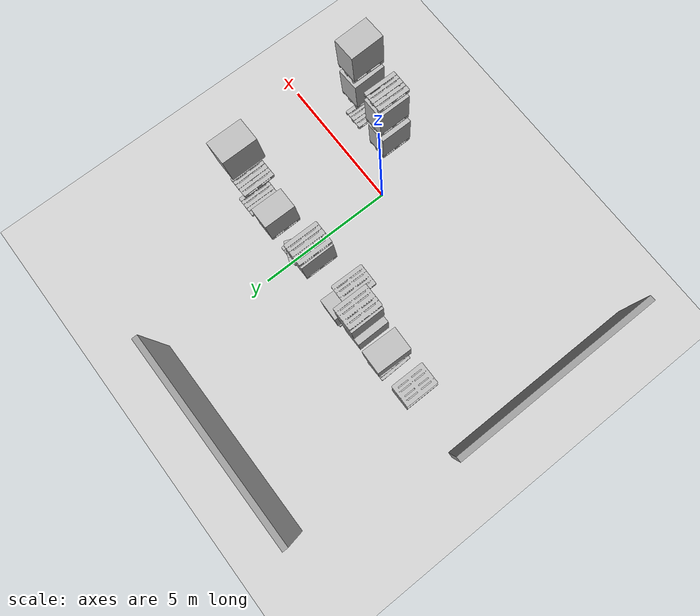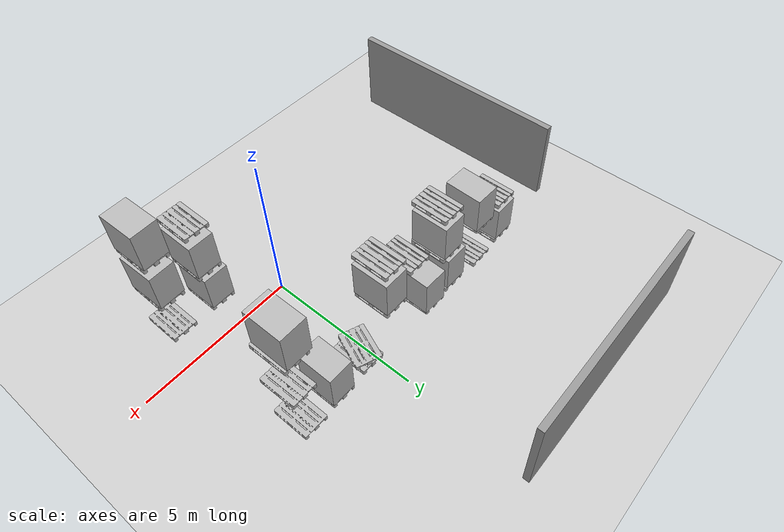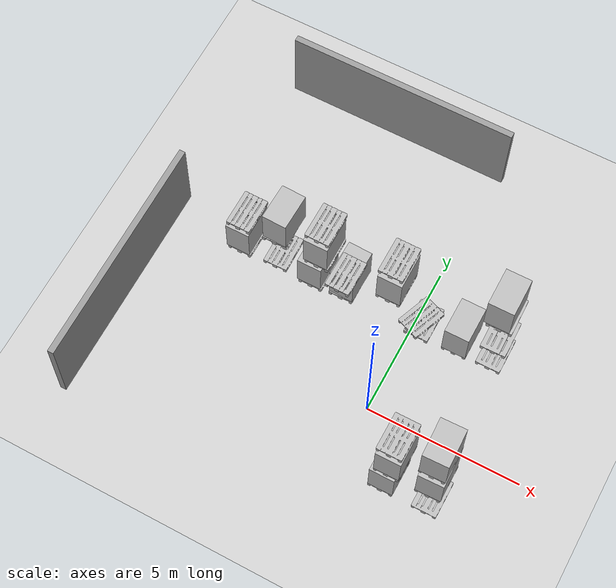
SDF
<sdf version="1.4">
 <world name="warehouse_alley">
  <scene><ambient>0.3 0.3 0.3 1.0</ambient><grid>true</grid><sky><clouds><speed>4</speed></clouds></sky></scene>
  <physics type="ode">
   <gravity>0 0 -9.81</gravity>
   <ode>
    <solver>
     <use_dynamic_moi_rescaling>true</use_dynamic_moi_rescaling>
     <type>quick</type>
     <iters>50</iters>
     <sor>1.0</sor>
    </solver>
    <constraints>
     <cfm>0.0</cfm>
     <erp>0.2</erp>
     <contact_max_correcting_vel>100.0</contact_max_correcting_vel>
     <contact_surface_layer>0.0</contact_surface_layer>
    </constraints>
   </ode>
   <real_time_update_rate>1000</real_time_update_rate>
   <max_step_size>0.001</max_step_size>
  </physics>
  <light type="directional" name="sun">
   <cast_shadows>false</cast_shadows>
   <pose>0 0 100 0 0 0</pose>
   <diffuse>0.3 0.3 0.3 1</diffuse>
   <specular>0.3 0.3 0.3 1</specular>
   <attenuation>
    <range>1000</range>
    <constant>1</constant>
    <linear>0.01</linear>
    <quadratic>0.001</quadratic>
   </attenuation>
   <direction>0 0 -1</direction>
  </light>
  <light type="spot" name="lamp_post_light">
   <pose>2 1 6  0 0 0</pose>
   <diffuse>0.5 0.5 0.5 1</diffuse>
   <specular>0.2 0.2 0.2 1</specular>
   <attenuation>
    <range>20</range>
    <constant>0.3</constant>
    <linear>0.05</linear>
    <quadratic>0.001</quadratic>
   </attenuation>
   <direction>0 0 -1</direction>
   <spot><inner_angle>0.9</inner_angle><outer_angle>2.0</outer_angle><falloff>1.0</falloff></spot>
  </light>
  <light type="spot" name="lamp_post_light2">
   <pose>-4.6 1 6  0 0 0</pose>
   <diffuse>0.5 0.5 0.5 1</diffuse>
   <specular>0.2 0.2 0.2 1</specular>
   <attenuation>
    <range>20</range>
    <constant>0.3</constant>
    <linear>0.05</linear>
    <quadratic>0.001</quadratic>
   </attenuation>
   <direction>0 0 -1</direction>
   <spot><inner_angle>0.9</inner_angle><outer_angle>2.0</outer_angle><falloff>1.0</falloff></spot>
  </light>
  <light type="spot" name="lamp_post_light_uav">
   <pose>9 -9 4  0 0 0</pose>
   <diffuse>0.4 0.4 0.4 1</diffuse>
   <specular>0.0 0.0 0.0 1</specular>
   <attenuation>
    <range>20</range>
    <constant>0.5</constant>
    <linear>0.05</linear>
    <quadratic>0.001</quadratic>
   </attenuation>
   <direction>0 0 -1</direction>
   <spot><inner_angle>0.25</inner_angle><outer_angle>0.5</outer_angle><falloff>1.0</falloff></spot>
  </light>
  <include><uri>model://ground_plane</uri></include>
  <include>
   <name>pallet 1 box</name>
   <uri>model://big_box3</uri>
   <pose>1.48626 3.390705 0.760253 0 0.000143 -1.57317</pose>
  </include>
  <include>
   <name>pallet 1 support</name>
   <uri>model://europallet</uri>
   <pose>1.48088 3.400944 0.0635 0 0 -1.56736</pose>
  </include>
  <include>
   <name>pallet 4 box</name>
   <uri>model://big_box3</uri>
   <pose>-2.37439 3.440964 0.776474 0 0 -1.59804</pose>
  </include>
  <include>
   <name>pallet 4 support</name>
   <uri>model://europallet</uri>
   <pose>-2.40127 3.415746 0.0635 0 0 -1.5558</pose>
  </include>
  <include>
   <name>pallet 7 support</name>
   <uri>model://europallet</uri>
   <pose>2.59788 3.454115 0.0635 0 0 -1.56921</pose>
  </include>
  <include>
   <name>pallet 10 box</name>
   <uri>model://big_box3</uri>
   <pose>-3.45548 3.349857 0.774725 0 0 -1.56894</pose>
  </include>
  <include>
   <name>pallet 10 support</name>
   <uri>model://europallet</uri>
   <pose>-3.41303 3.343739 0.0635 0 -0 1.56536</pose>
  </include>
  <include>
   <name>pallet 11 support</name>
   <uri>model://europallet</uri>
   <pose>-4.70127 3.415746 0.0635 0 0 -1.5558</pose>
  </include>
  <include>
   <name>pallet 12 box</name>
   <uri>model://big_box3</uri>
   <pose>-5.95548 3.349857 0.774725 0 0 -1.56894</pose>
  </include>
  <include>
   <name>pallet 12 support</name>
   <uri>model://europallet</uri>
   <pose>-5.91303 3.343739 0.0635 0 -0 1.56536</pose>
  </include>
  <include>
   <name>pallet 18 support</name>
   <uri>model://europallet</uri>
   <pose>0.234986 3.337637 0.0635 0 -0 1.56536</pose>
  </include>
  <include>
   <name>pallet 18b support</name>
   <uri>model://europallet</uri>
   <pose>0.134986 3.337637 0.2102 0 -0 1.2</pose>
  </include>
  <include>
   <name>pallet 2 box</name>
   <uri>model://big_box3</uri>
   <pose>-3.25548 3.349857 2.3397 0 0 -1.56894</pose>
  </include>
  <include>
   <name>pallet 2 support</name>
   <uri>model://europallet</uri>
   <pose>-3.21303 3.343739 1.6373 0 -0 1.56536</pose>
  </include>
  <include>
   <name>pallet 8 support</name>
   <uri>model://europallet</uri>
   <pose>2.64128 3.308661 1.64676 0 0 -1.55378</pose>
  </include>
  <include>
   <name>pallet 9 support</name>
   <uri>model://europallet</uri>
   <pose>-2.28744 2.915349 1.64676 0 -0 1.5541</pose>
  </include>
  <include>
   <name>pallet 13 box</name>
   <uri>model://big_box3</uri>
   <pose>-4.67439 3.440964 2.35696 0 0 -1.59804</pose>
  </include>
  <include>
   <name>pallet 13 support</name>
   <uri>model://europallet</uri>
   <pose>-4.70127 3.415746 1.64676 0 0 -1.5558</pose>
  </include>
  <include>
   <name>pallet 14 support</name>
   <uri>model://europallet</uri>
   <pose>-5.91303 3.343739 1.64676 0 -0 1.56536</pose>
  </include>
  <include>
   <name>pallet 19 box</name>
   <uri>model://big_box3</uri>
   <pose>-0.8 3.337637 2.3397 0 0 -1.56894</pose>
  </include>
  <include>
   <name>pallet 19 support</name>
   <uri>model://europallet</uri>
   <pose>-0.8 3.337637 1.6373 0 -0 1.56536</pose>
  </include>
  <include>
   <name>pallet 20 support</name>
   <uri>model://europallet</uri>
   <pose>-3.21303 3.343739 3.27046 0 -0 1.56536</pose>
  </include>
  <include>
   <name>pallet 21 box</name>
   <uri>model://big_box3</uri>
   <pose>2.56918 3.321158 3.97286 0 0 -1.56652</pose>
  </include>
  <include>
   <name>pallet 21 support</name>
   <uri>model://europallet</uri>
   <pose>2.64128 3.308661 3.27046 0 0 -1.55378</pose>
  </include>
  <include>
   <name>pallet 22 support</name>
   <uri>model://europallet</uri>
   <pose>-0.8 3.337637 3.27046 0 -0 1.56536</pose>
  </include>
  <include>
   <name>pallet B-0-1 box</name>
   <uri>model://big_box3</uri>
   <pose>1.48626 -1.5 0.760253 0 0.000143 1.57317</pose>
  </include>
  <include>
   <name>pallet B-0-1 support</name>
   <uri>model://europallet</uri>
   <pose>1.48088 -1.5 0.0635 0 0 1.56736</pose>
  </include>
  <include>
   <name>pallet B-0-2 support</name>
   <uri>model://europallet</uri>
   <pose>2.9 -1.5 0.0635 0 0 1.56921</pose>
  </include>
  <include>
   <name>pallet B-1-1 box</name>
   <uri>model://big_box3</uri>
   <pose>1.6 -1.5 2.30 0 0.000143 1.57317</pose>
   <static>true</static>
  </include>
  <include>
   <name>pallet B-1-1-1 support</name>
   <uri>model://europallet</uri>
   <pose>1.6 -1.5 1.60 0 0 1.56736</pose>
   <static>true</static>
  </include>
  <include>
   <name>pallet B-1-2 box</name>
   <uri>model://big_box3</uri>
   <pose>2.9 -1.5 2.30 0 0 1.59992</pose>
   <static>true</static>
  </include>
  <include>
   <name>pallet B-1-2 support</name>
   <uri>model://europallet</uri>
   <pose>2.9 -1.5 1.60 0 0 1.56921</pose>
   <static>true</static>
  </include>
  <include>
   <name>pallet B-1-1-1 support</name>
   <uri>model://europallet</uri>
   <pose>1.6 -1.5 3.27 0 0 1.56736</pose>
   <static>true</static>
  </include>
  <include>
   <name>pallet B-2-2 box</name>
   <uri>model://big_box3</uri>
   <pose>2.9 -1.5 3.97 0 0 1.59992</pose>
   <static>true</static>
  </include>
  <include>
   <name>pallet B-1-2 support</name>
   <uri>model://europallet</uri>
   <pose>2.9 -1.5 3.27 0 0 1.56921</pose>
   <static>true</static>
  </include>
  <include><name>grey_wall</name><uri>model://grey_wall</uri><pose>-8.34545 0 0 0 0 -1.57</pose></include>
  <include><name>grey_wall2</name><uri>model://grey_wall</uri><pose>-3.5 9 0 0 0 0</pose></include>
 </world>
</sdf>

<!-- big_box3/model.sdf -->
<sdf version="1.5">
  <model name="big_box3">
    <pose>0 0 0.625  0 0 0</pose>
    <static>false</static>
    <link name="link">
      <inertial>
        <mass>40.0</mass>
        <inertia>
          <ixx>1</ixx>
          <ixy>0</ixy>
          <ixz>0</ixz>
          <iyy>1</iyy>
          <iyz>0</iyz>
          <izz>1</izz>
        </inertia>
      </inertial>

      <collision name="collision">
        <geometry>
          <box>
              <size>1.20 0.80 1.25</size>
          </box>
        </geometry>
	<surface>
          <contact>
            <ode>
              <max_vel>0.1</max_vel>
              <min_depth>0.001</min_depth>
            </ode>
          </contact>
        </surface>
      </collision>
      <visual name="visual">
        <geometry>
          <mesh>
            <uri>model://../model_source/models/big_box3/meshes/big_box.dae</uri>
          </mesh>
	</geometry>
      </visual>
    </link>
  </model>
</sdf>

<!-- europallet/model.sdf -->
<sdf version="1.5">
  <model name="EuroPallet">
    <!-- Rises the pallet above the ground -->
    <pose>0 0 0.0635  0 0 0</pose>

    <static>false</static>
    <link name="link">
      <inertial>
        <mass>25.0</mass>
        <inertia>
          <ixx>1</ixx>
          <ixy>0</ixy>
          <ixz>0</ixz>
          <iyy>1</iyy>
          <iyz>0</iyz>
          <izz>1</izz>
        </inertia>
      </inertial>

      <collision name="top">
	    <pose>0 0 0.0625  0 0 0</pose>
        <geometry>
		  <box>
		    <size>1.20 0.80 0.042</size>
	      </box>
        </geometry>

      </collision>

      <collision name="colum_1">
	    <pose>0.5275 -0.35 0  0 0 0</pose>
        <geometry>
		  <box>
		    <size>.145 0.10 0.085</size>
	      </box>
        </geometry>
      </collision>

      <collision name="colum_2">
	    <pose>0.5275 0 0  0 0 0</pose>
        <geometry>
		  <box>
		    <size>.145 0.145 0.085</size>
	      </box>
        </geometry>
      </collision>

      <collision name="colum_3">
	    <pose>0.5275 0.35 0  0 0 0</pose>
        <geometry>
		  <box>
		    <size>.145 0.10 0.085</size>
	      </box>
        </geometry>
      </collision>

      <collision name="colum_4">
	    <pose>0 -0.35 0  0 0 0</pose>
        <geometry>
		  <box>
		    <size>.145 0.10 0.085</size>
	      </box>
        </geometry>
      </collision>

      <collision name="colum_5">
	    <pose>0 0 0  0 0 0</pose>
        <geometry>
		  <box>
		    <size>.145 0.145 0.085</size>
	      </box>
        </geometry>
      </collision>

      <collision name="colum_6">
	    <pose>0 0.35 0  0 0 0</pose>
        <geometry>
		  <box>
		    <size>.145 0.10 0.085</size>
	      </box>
        </geometry>
      </collision>

      <collision name="colum_7">
	    <pose>-0.5275 -0.35 0  0 0 0</pose>
        <geometry>
		  <box>
		    <size>.145 0.10 0.085</size>
	      </box>
        </geometry>
      </collision>

      <collision name="colum_8">
	    <pose>-0.5275 0 0  0 0 0</pose>
        <geometry>
		  <box>
		    <size>.145 0.145 0.085</size>
	      </box>
        </geometry>
      </collision>

      <collision name="colum_9">
	    <pose>-0.5275 0.35 0  0 0 0</pose>
        <geometry>
		  <box>
		    <size>.145 0.10 0.085</size>
	      </box>
        </geometry>
      </collision>

      <collision name="bottom_1">
	    <pose>0 -0.35 -0.053  0 0 0</pose>
        <geometry>
		  <box>
		    <size>1.20 0.10 0.021</size>
	      </box>
        </geometry>
      </collision>

      <collision name="bottom_2">
	    <pose>0 0 -0.053  0 0 0</pose>
        <geometry>
		  <box>
		    <size>1.20 0.145 0.021</size>
	      </box>
        </geometry>
      </collision>

      <collision name="bottom_3">
	    <pose>0 0.35 -0.053  0 0 0</pose>
        <geometry>
		  <box>
		    <size>1.20 0.10 0.021</size>
	      </box>
        </geometry>
      </collision>

      <visual name="visual">
        <geometry>
          <mesh>
            <uri>model://europallet/meshes/europallet.dae</uri>
          </mesh>
        </geometry>
      </visual>
    </link>
  </model>
</sdf>

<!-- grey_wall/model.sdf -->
<sdf version="1.5">
  <model name="grey_wall">
    <static>true</static>
    <link name="link">
      <pose>0 0 1.4 0 0 0</pose>
      <collision name="collision">
        <geometry>
          <box>
            <size>7.5 0.2 2.8</size>
          </box>
        </geometry>
      </collision>
      <visual name="visual">
        <cast_shadows>false</cast_shadows>
        <geometry>
          <box>
            <size>7.5 0.2 2.8</size>
          </box>
        </geometry>
        <material>
          <script>
            <uri>model://../model_source/models/grey_wall/materials/scripts</uri>
            <uri>model://../model_source/models/grey_wall/materials/textures</uri>
            <name>vrc/grey_wall</name>
          </script>
        </material>
      </visual>
    </link>
  </model>
</sdf>
